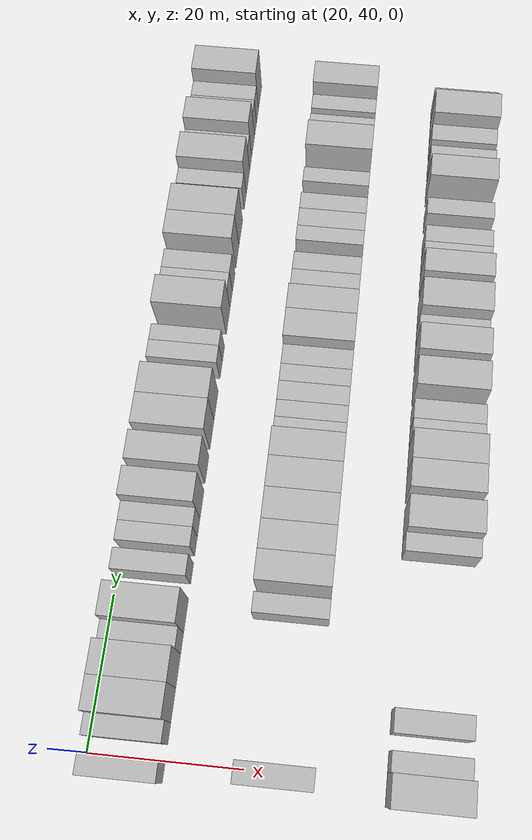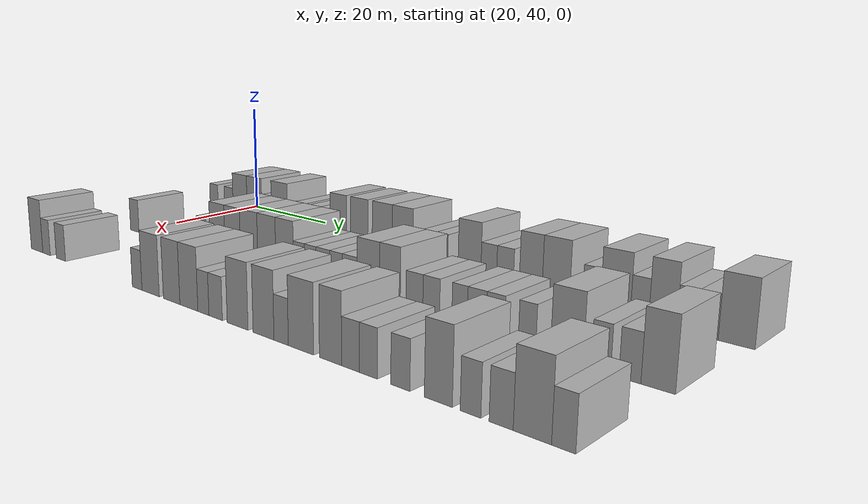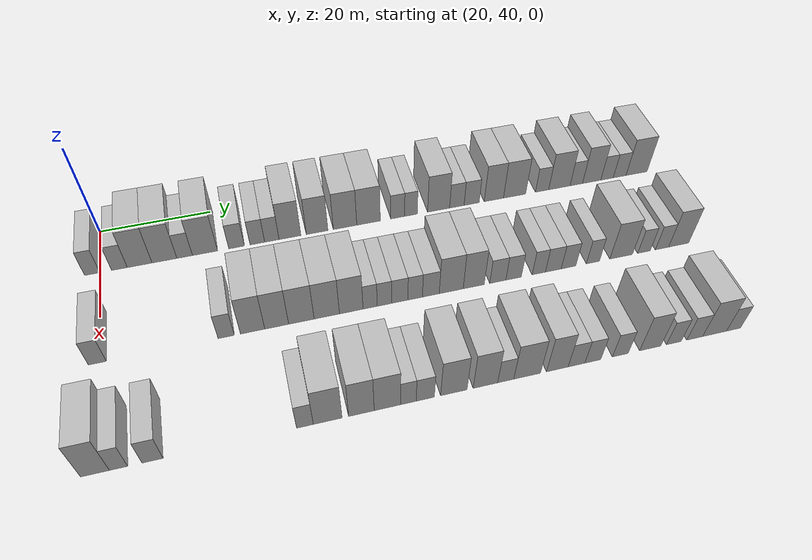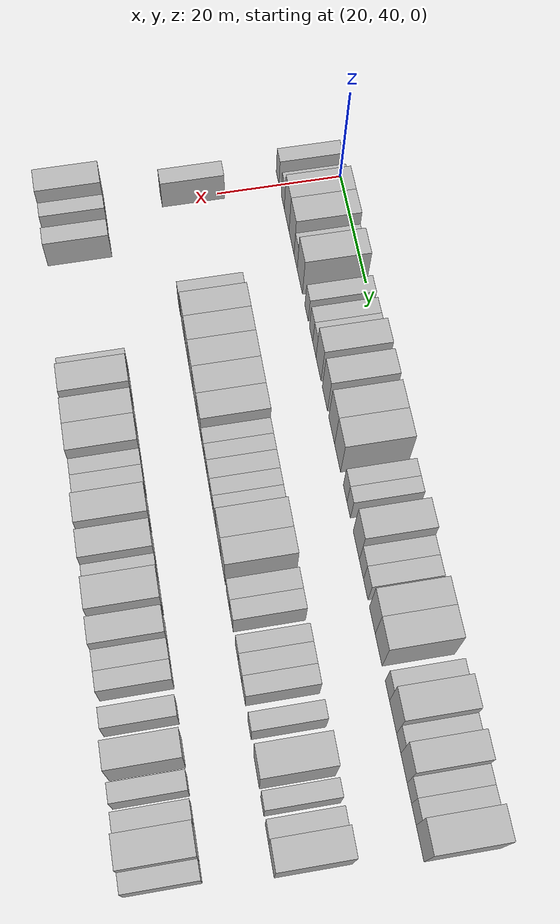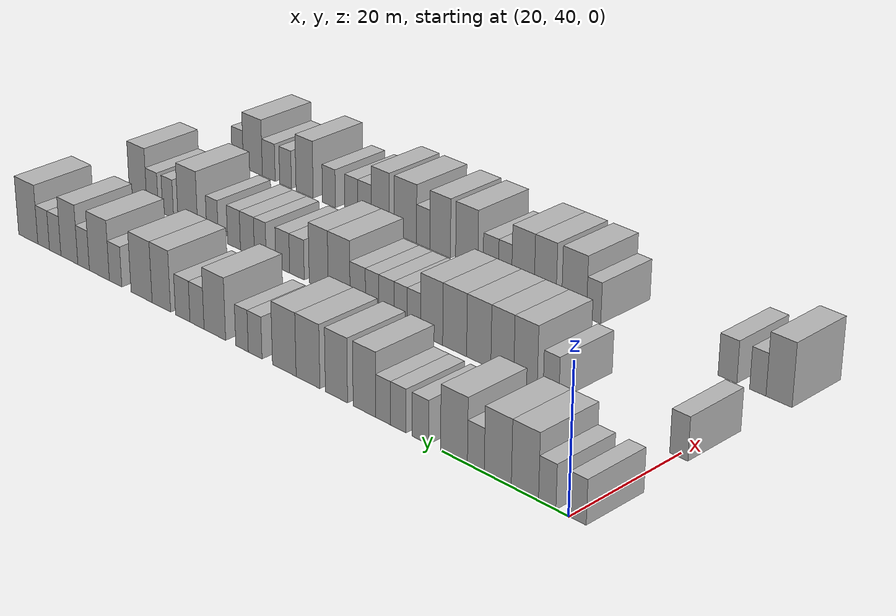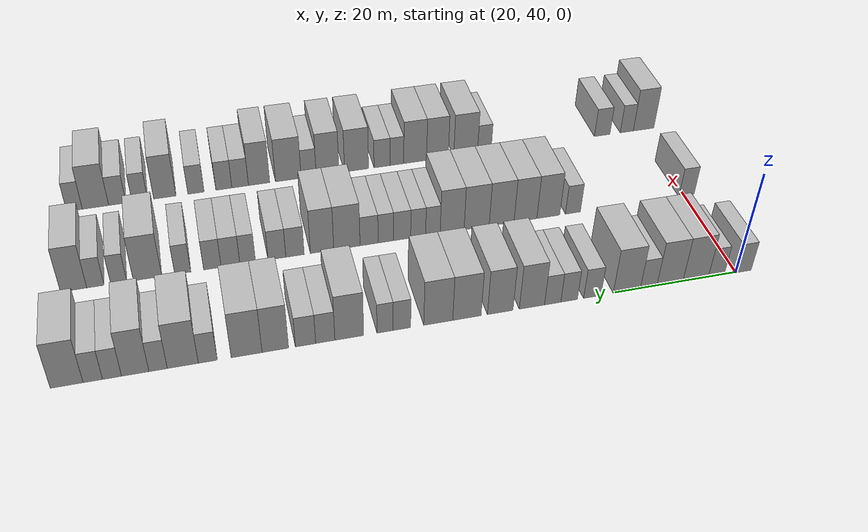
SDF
<sdf version="1.6">
 <world name="default">
  <model name="building_74">
   <static>1</static>
   <pose>25.0000 38.6891 0 0.000000 0.000000 0.000000</pose>
   <link name="link">
    <pose>0 0 3.00 0 0 0</pose>
    <collision name="collision"><geometry><box><size>10.0000 2.5758 6.0000</size></box></geometry></collision>
    <visual name="visual">
     <cast_shadows>0</cast_shadows>
     <geometry><box><size>10.0000 2.5758 6.0000</size></box></geometry>
     <material>
      <script>
       <uri>model://HANNAS_wall/materials/scripts</uri>
       <uri>model://HANNAS_wall/materials/textures</uri>
       <name>vrc/HANNAS_wall</name>
      </script>
     </material>
    </visual>
   </link>
  </model>
  <model name="building_75">
   <static>1</static>
   <pose>25.0000 43.3179 0 0.000000 0.000000 0.000000</pose>
   <link name="link">
    <pose>0 0 3.00 0 0 0</pose>
    <collision name="collision"><geometry><box><size>10.0000 2.6818 6.0000</size></box></geometry></collision>
    <visual name="visual">
     <cast_shadows>0</cast_shadows>
     <geometry><box><size>10.0000 2.6818 6.0000</size></box></geometry>
     <material>
      <script>
       <uri>model://HANNAS_wall/materials/scripts</uri>
       <uri>model://HANNAS_wall/materials/textures</uri>
       <name>vrc/HANNAS_wall</name>
      </script>
     </material>
    </visual>
   </link>
  </model>
  <model name="building_76">
   <static>1</static>
   <pose>25.0000 46.7869 0 0.000000 0.000000 0.000000</pose>
   <link name="link">
    <pose>0 0 4.50 0 0 0</pose>
    <collision name="collision"><geometry><box><size>10.0000 4.2561 9.0000</size></box></geometry></collision>
    <visual name="visual">
     <cast_shadows>0</cast_shadows>
     <geometry><box><size>10.0000 4.2561 9.0000</size></box></geometry>
     <material>
      <script>
       <uri>model://HANNAS_wall/materials/scripts</uri>
       <uri>model://HANNAS_wall/materials/textures</uri>
       <name>vrc/HANNAS_wall</name>
      </script>
     </material>
    </visual>
   </link>
  </model>
  <model name="building_77">
   <static>1</static>
   <pose>25.0000 51.0755 0 0.000000 0.000000 0.000000</pose>
   <link name="link">
    <pose>0 0 4.50 0 0 0</pose>
    <collision name="collision"><geometry><box><size>10.0000 4.3211 9.0000</size></box></geometry></collision>
    <visual name="visual">
     <cast_shadows>0</cast_shadows>
     <geometry><box><size>10.0000 4.3211 9.0000</size></box></geometry>
     <material>
      <script>
       <uri>model://HANNAS_wall/materials/scripts</uri>
       <uri>model://HANNAS_wall/materials/textures</uri>
       <name>vrc/HANNAS_wall</name>
      </script>
     </material>
    </visual>
   </link>
  </model>
  <model name="building_78">
   <static>1</static>
   <pose>25.0000 54.5985 0 0.000000 0.000000 0.000000</pose>
   <link name="link">
    <pose>0 0 3.00 0 0 0</pose>
    <collision name="collision"><geometry><box><size>10.0000 2.7249 6.0000</size></box></geometry></collision>
    <visual name="visual">
     <cast_shadows>0</cast_shadows>
     <geometry><box><size>10.0000 2.7249 6.0000</size></box></geometry>
     <material>
      <script>
       <uri>model://HANNAS_wall/materials/scripts</uri>
       <uri>model://HANNAS_wall/materials/textures</uri>
       <name>vrc/HANNAS_wall</name>
      </script>
     </material>
    </visual>
   </link>
  </model>
  <model name="building_79">
   <static>1</static>
   <pose>25.0000 58.1758 0 0.000000 0.000000 0.000000</pose>
   <link name="link">
    <pose>0 0 4.50 0 0 0</pose>
    <collision name="collision"><geometry><box><size>10.0000 4.4297 9.0000</size></box></geometry></collision>
    <visual name="visual">
     <cast_shadows>0</cast_shadows>
     <geometry><box><size>10.0000 4.4297 9.0000</size></box></geometry>
     <material>
      <script>
       <uri>model://HANNAS_wall/materials/scripts</uri>
       <uri>model://HANNAS_wall/materials/textures</uri>
       <name>vrc/HANNAS_wall</name>
      </script>
     </material>
    </visual>
   </link>
  </model>
  <model name="building_80">
   <static>1</static>
   <pose>25.0000 63.7947 0 0.000000 0.000000 0.000000</pose>
   <link name="link">
    <pose>0 0 3.00 0 0 0</pose>
    <collision name="collision"><geometry><box><size>10.0000 2.8082 6.0000</size></box></geometry></collision>
    <visual name="visual">
     <cast_shadows>0</cast_shadows>
     <geometry><box><size>10.0000 2.8082 6.0000</size></box></geometry>
     <material>
      <script>
       <uri>model://HANNAS_wall/materials/scripts</uri>
       <uri>model://HANNAS_wall/materials/textures</uri>
       <name>vrc/HANNAS_wall</name>
      </script>
     </material>
    </visual>
   </link>
  </model>
  <model name="building_81">
   <static>1</static>
   <pose>25.0000 67.5253 0 0.000000 0.000000 0.000000</pose>
   <link name="link">
    <pose>0 0 3.00 0 0 0</pose>
    <collision name="collision"><geometry><box><size>10.0000 2.6530 6.0000</size></box></geometry></collision>
    <visual name="visual">
     <cast_shadows>0</cast_shadows>
     <geometry><box><size>10.0000 2.6530 6.0000</size></box></geometry>
     <material>
      <script>
       <uri>model://HANNAS_wall/materials/scripts</uri>
       <uri>model://HANNAS_wall/materials/textures</uri>
       <name>vrc/HANNAS_wall</name>
      </script>
     </material>
    </visual>
   </link>
  </model>
  <model name="building_82">
   <static>1</static>
   <pose>25.0000 70.1543 0 0.000000 0.000000 0.000000</pose>
   <link name="link">
    <pose>0 0 3.00 0 0 0</pose>
    <collision name="collision"><geometry><box><size>10.0000 2.6051 6.0000</size></box></geometry></collision>
    <visual name="visual">
     <cast_shadows>0</cast_shadows>
     <geometry><box><size>10.0000 2.6051 6.0000</size></box></geometry>
     <material>
      <script>
       <uri>model://HANNAS_wall/materials/scripts</uri>
       <uri>model://HANNAS_wall/materials/textures</uri>
       <name>vrc/HANNAS_wall</name>
      </script>
     </material>
    </visual>
   </link>
  </model>
  <model name="building_83">
   <static>1</static>
   <pose>25.0000 73.4548 0 0.000000 0.000000 0.000000</pose>
   <link name="link">
    <pose>0 0 4.50 0 0 0</pose>
    <collision name="collision"><geometry><box><size>10.0000 3.9959 9.0000</size></box></geometry></collision>
    <visual name="visual">
     <cast_shadows>0</cast_shadows>
     <geometry><box><size>10.0000 3.9959 9.0000</size></box></geometry>
     <material>
      <script>
       <uri>model://HANNAS_wall/materials/scripts</uri>
       <uri>model://HANNAS_wall/materials/textures</uri>
       <name>vrc/HANNAS_wall</name>
      </script>
     </material>
    </visual>
   </link>
  </model>
  <model name="building_84">
   <static>1</static>
   <pose>25.0000 78.4552 0 0.000000 0.000000 0.000000</pose>
   <link name="link">
    <pose>0 0 4.50 0 0 0</pose>
    <collision name="collision"><geometry><box><size>10.0000 4.0050 9.0000</size></box></geometry></collision>
    <visual name="visual">
     <cast_shadows>0</cast_shadows>
     <geometry><box><size>10.0000 4.0050 9.0000</size></box></geometry>
     <material>
      <script>
       <uri>model://HANNAS_wall/materials/scripts</uri>
       <uri>model://HANNAS_wall/materials/textures</uri>
       <name>vrc/HANNAS_wall</name>
      </script>
     </material>
    </visual>
   </link>
  </model>
  <model name="building_85">
   <static>1</static>
   <pose>25.0000 83.6570 0 0.000000 0.000000 0.000000</pose>
   <link name="link">
    <pose>0 0 4.50 0 0 0</pose>
    <collision name="collision"><geometry><box><size>10.0000 4.3985 9.0000</size></box></geometry></collision>
    <visual name="visual">
     <cast_shadows>0</cast_shadows>
     <geometry><box><size>10.0000 4.3985 9.0000</size></box></geometry>
     <material>
      <script>
       <uri>model://HANNAS_wall/materials/scripts</uri>
       <uri>model://HANNAS_wall/materials/textures</uri>
       <name>vrc/HANNAS_wall</name>
      </script>
     </material>
    </visual>
   </link>
  </model>
  <model name="building_86">
   <static>1</static>
   <pose>25.0000 88.0851 0 0.000000 0.000000 0.000000</pose>
   <link name="link">
    <pose>0 0 4.50 0 0 0</pose>
    <collision name="collision"><geometry><box><size>10.0000 4.4577 9.0000</size></box></geometry></collision>
    <visual name="visual">
     <cast_shadows>0</cast_shadows>
     <geometry><box><size>10.0000 4.4577 9.0000</size></box></geometry>
     <material>
      <script>
       <uri>model://HANNAS_wall/materials/scripts</uri>
       <uri>model://HANNAS_wall/materials/textures</uri>
       <name>vrc/HANNAS_wall</name>
      </script>
     </material>
    </visual>
   </link>
  </model>
  <model name="building_87">
   <static>1</static>
   <pose>25.0000 93.6414 0 0.000000 0.000000 0.000000</pose>
   <link name="link">
    <pose>0 0 3.00 0 0 0</pose>
    <collision name="collision"><geometry><box><size>10.0000 2.6549 6.0000</size></box></geometry></collision>
    <visual name="visual">
     <cast_shadows>0</cast_shadows>
     <geometry><box><size>10.0000 2.6549 6.0000</size></box></geometry>
     <material>
      <script>
       <uri>model://HANNAS_wall/materials/scripts</uri>
       <uri>model://HANNAS_wall/materials/textures</uri>
       <name>vrc/HANNAS_wall</name>
      </script>
     </material>
    </visual>
   </link>
  </model>
  <model name="building_88">
   <static>1</static>
   <pose>25.0000 96.1899 0 0.000000 0.000000 0.000000</pose>
   <link name="link">
    <pose>0 0 3.00 0 0 0</pose>
    <collision name="collision"><geometry><box><size>10.0000 2.4421 6.0000</size></box></geometry></collision>
    <visual name="visual">
     <cast_shadows>0</cast_shadows>
     <geometry><box><size>10.0000 2.4421 6.0000</size></box></geometry>
     <material>
      <script>
       <uri>model://HANNAS_wall/materials/scripts</uri>
       <uri>model://HANNAS_wall/materials/textures</uri>
       <name>vrc/HANNAS_wall</name>
      </script>
     </material>
    </visual>
   </link>
  </model>
  <model name="building_89">
   <static>1</static>
   <pose>25.0000 101.5640 0 0.000000 0.000000 0.000000</pose>
   <link name="link">
    <pose>0 0 4.50 0 0 0</pose>
    <collision name="collision"><geometry><box><size>10.0000 4.3061 9.0000</size></box></geometry></collision>
    <visual name="visual">
     <cast_shadows>0</cast_shadows>
     <geometry><box><size>10.0000 4.3061 9.0000</size></box></geometry>
     <material>
      <script>
       <uri>model://HANNAS_wall/materials/scripts</uri>
       <uri>model://HANNAS_wall/materials/textures</uri>
       <name>vrc/HANNAS_wall</name>
      </script>
     </material>
    </visual>
   </link>
  </model>
  <model name="building_90">
   <static>1</static>
   <pose>25.0000 105.1426 0 0.000000 0.000000 0.000000</pose>
   <link name="link">
    <pose>0 0 3.00 0 0 0</pose>
    <collision name="collision"><geometry><box><size>10.0000 2.8512 6.0000</size></box></geometry></collision>
    <visual name="visual">
     <cast_shadows>0</cast_shadows>
     <geometry><box><size>10.0000 2.8512 6.0000</size></box></geometry>
     <material>
      <script>
       <uri>model://HANNAS_wall/materials/scripts</uri>
       <uri>model://HANNAS_wall/materials/textures</uri>
       <name>vrc/HANNAS_wall</name>
      </script>
     </material>
    </visual>
   </link>
  </model>
  <model name="building_91">
   <static>1</static>
   <pose>25.0000 108.0610 0 0.000000 0.000000 0.000000</pose>
   <link name="link">
    <pose>0 0 3.00 0 0 0</pose>
    <collision name="collision"><geometry><box><size>10.0000 2.9856 6.0000</size></box></geometry></collision>
    <visual name="visual">
     <cast_shadows>0</cast_shadows>
     <geometry><box><size>10.0000 2.9856 6.0000</size></box></geometry>
     <material>
      <script>
       <uri>model://HANNAS_wall/materials/scripts</uri>
       <uri>model://HANNAS_wall/materials/textures</uri>
       <name>vrc/HANNAS_wall</name>
      </script>
     </material>
    </visual>
   </link>
  </model>
  <model name="building_92">
   <static>1</static>
   <pose>25.0000 112.4862 0 0.000000 0.000000 0.000000</pose>
   <link name="link">
    <pose>0 0 4.50 0 0 0</pose>
    <collision name="collision"><geometry><box><size>10.0000 3.8649 9.0000</size></box></geometry></collision>
    <visual name="visual">
     <cast_shadows>0</cast_shadows>
     <geometry><box><size>10.0000 3.8649 9.0000</size></box></geometry>
     <material>
      <script>
       <uri>model://HANNAS_wall/materials/scripts</uri>
       <uri>model://HANNAS_wall/materials/textures</uri>
       <name>vrc/HANNAS_wall</name>
      </script>
     </material>
    </visual>
   </link>
  </model>
  <model name="building_93">
   <static>1</static>
   <pose>25.0000 116.6556 0 0.000000 0.000000 0.000000</pose>
   <link name="link">
    <pose>0 0 4.50 0 0 0</pose>
    <collision name="collision"><geometry><box><size>10.0000 4.4738 9.0000</size></box></geometry></collision>
    <visual name="visual">
     <cast_shadows>0</cast_shadows>
     <geometry><box><size>10.0000 4.4738 9.0000</size></box></geometry>
     <material>
      <script>
       <uri>model://HANNAS_wall/materials/scripts</uri>
       <uri>model://HANNAS_wall/materials/textures</uri>
       <name>vrc/HANNAS_wall</name>
      </script>
     </material>
    </visual>
   </link>
  </model>
  <model name="building_94">
   <static>1</static>
   <pose>25.0000 122.2431 0 0.000000 0.000000 0.000000</pose>
   <link name="link">
    <pose>0 0 3.00 0 0 0</pose>
    <collision name="collision"><geometry><box><size>10.0000 2.7012 6.0000</size></box></geometry></collision>
    <visual name="visual">
     <cast_shadows>0</cast_shadows>
     <geometry><box><size>10.0000 2.7012 6.0000</size></box></geometry>
     <material>
      <script>
       <uri>model://HANNAS_wall/materials/scripts</uri>
       <uri>model://HANNAS_wall/materials/textures</uri>
       <name>vrc/HANNAS_wall</name>
      </script>
     </material>
    </visual>
   </link>
  </model>
  <model name="building_95">
   <static>1</static>
   <pose>25.0000 125.7978 0 0.000000 0.000000 0.000000</pose>
   <link name="link">
    <pose>0 0 4.50 0 0 0</pose>
    <collision name="collision"><geometry><box><size>10.0000 4.4082 9.0000</size></box></geometry></collision>
    <visual name="visual">
     <cast_shadows>0</cast_shadows>
     <geometry><box><size>10.0000 4.4082 9.0000</size></box></geometry>
     <material>
      <script>
       <uri>model://HANNAS_wall/materials/scripts</uri>
       <uri>model://HANNAS_wall/materials/textures</uri>
       <name>vrc/HANNAS_wall</name>
      </script>
     </material>
    </visual>
   </link>
  </model>
  <model name="building_96">
   <static>1</static>
   <pose>25.0000 129.2958 0 0.000000 0.000000 0.000000</pose>
   <link name="link">
    <pose>0 0 3.00 0 0 0</pose>
    <collision name="collision"><geometry><box><size>10.0000 2.5879 6.0000</size></box></geometry></collision>
    <visual name="visual">
     <cast_shadows>0</cast_shadows>
     <geometry><box><size>10.0000 2.5879 6.0000</size></box></geometry>
     <material>
      <script>
       <uri>model://HANNAS_wall/materials/scripts</uri>
       <uri>model://HANNAS_wall/materials/textures</uri>
       <name>vrc/HANNAS_wall</name>
      </script>
     </material>
    </visual>
   </link>
  </model>
  <model name="building_97">
   <static>1</static>
   <pose>25.0000 132.5038 0 0.000000 0.000000 0.000000</pose>
   <link name="link">
    <pose>0 0 4.50 0 0 0</pose>
    <collision name="collision"><geometry><box><size>10.0000 3.8282 9.0000</size></box></geometry></collision>
    <visual name="visual">
     <cast_shadows>0</cast_shadows>
     <geometry><box><size>10.0000 3.8282 9.0000</size></box></geometry>
     <material>
      <script>
       <uri>model://HANNAS_wall/materials/scripts</uri>
       <uri>model://HANNAS_wall/materials/textures</uri>
       <name>vrc/HANNAS_wall</name>
      </script>
     </material>
    </visual>
   </link>
  </model>
  <model name="building_98">
   <static>1</static>
   <pose>25.0000 135.7334 0 0.000000 0.000000 0.000000</pose>
   <link name="link">
    <pose>0 0 3.00 0 0 0</pose>
    <collision name="collision"><geometry><box><size>10.0000 2.6311 6.0000</size></box></geometry></collision>
    <visual name="visual">
     <cast_shadows>0</cast_shadows>
     <geometry><box><size>10.0000 2.6311 6.0000</size></box></geometry>
     <material>
      <script>
       <uri>model://HANNAS_wall/materials/scripts</uri>
       <uri>model://HANNAS_wall/materials/textures</uri>
       <name>vrc/HANNAS_wall</name>
      </script>
     </material>
    </visual>
   </link>
  </model>
  <model name="building_99">
   <static>1</static>
   <pose>25.0000 138.3954 0 0.000000 0.000000 0.000000</pose>
   <link name="link">
    <pose>0 0 3.00 0 0 0</pose>
    <collision name="collision"><geometry><box><size>10.0000 2.6928 6.0000</size></box></geometry></collision>
    <visual name="visual">
     <cast_shadows>0</cast_shadows>
     <geometry><box><size>10.0000 2.6928 6.0000</size></box></geometry>
     <material>
      <script>
       <uri>model://HANNAS_wall/materials/scripts</uri>
       <uri>model://HANNAS_wall/materials/textures</uri>
       <name>vrc/HANNAS_wall</name>
      </script>
     </material>
    </visual>
   </link>
  </model>
  <model name="building_100">
   <static>1</static>
   <pose>25.0000 141.9880 0 0.000000 0.000000 0.000000</pose>
   <link name="link">
    <pose>0 0 4.50 0 0 0</pose>
    <collision name="collision"><geometry><box><size>10.0000 4.4924 9.0000</size></box></geometry></collision>
    <visual name="visual">
     <cast_shadows>0</cast_shadows>
     <geometry><box><size>10.0000 4.4924 9.0000</size></box></geometry>
     <material>
      <script>
       <uri>model://HANNAS_wall/materials/scripts</uri>
       <uri>model://HANNAS_wall/materials/textures</uri>
       <name>vrc/HANNAS_wall</name>
      </script>
     </material>
    </visual>
   </link>
  </model>
  <model name="building_195">
   <static>1</static>
   <pose>44.0000 39.6334 0 0.000000 0.000000 0.000000</pose>
   <link name="link">
    <pose>0 0 3.00 0 0 0</pose>
    <collision name="collision"><geometry><box><size>10.0000 2.7764 6.0000</size></box></geometry></collision>
    <visual name="visual">
     <cast_shadows>0</cast_shadows>
     <geometry><box><size>10.0000 2.7764 6.0000</size></box></geometry>
     <material>
      <script>
       <uri>model://HANNAS_wall/materials/scripts</uri>
       <uri>model://HANNAS_wall/materials/textures</uri>
       <name>vrc/HANNAS_wall</name>
      </script>
     </material>
    </visual>
   </link>
  </model>
  <model name="building_196">
   <static>1</static>
   <pose>44.0000 59.9725 0 0.000000 0.000000 0.000000</pose>
   <link name="link">
    <pose>0 0 3.00 0 0 0</pose>
    <collision name="collision"><geometry><box><size>10.0000 2.6339 6.0000</size></box></geometry></collision>
    <visual name="visual">
     <cast_shadows>0</cast_shadows>
     <geometry><box><size>10.0000 2.6339 6.0000</size></box></geometry>
     <material>
      <script>
       <uri>model://HANNAS_wall/materials/scripts</uri>
       <uri>model://HANNAS_wall/materials/textures</uri>
       <name>vrc/HANNAS_wall</name>
      </script>
     </material>
    </visual>
   </link>
  </model>
  <model name="building_197">
   <static>1</static>
   <pose>44.0000 64.2819 0 0.000000 0.000000 0.000000</pose>
   <link name="link">
    <pose>0 0 4.50 0 0 0</pose>
    <collision name="collision"><geometry><box><size>10.0000 3.9849 9.0000</size></box></geometry></collision>
    <visual name="visual">
     <cast_shadows>0</cast_shadows>
     <geometry><box><size>10.0000 3.9849 9.0000</size></box></geometry>
     <material>
      <script>
       <uri>model://HANNAS_wall/materials/scripts</uri>
       <uri>model://HANNAS_wall/materials/textures</uri>
       <name>vrc/HANNAS_wall</name>
      </script>
     </material>
    </visual>
   </link>
  </model>
  <model name="building_198">
   <static>1</static>
   <pose>44.0000 68.2521 0 0.000000 0.000000 0.000000</pose>
   <link name="link">
    <pose>0 0 4.50 0 0 0</pose>
    <collision name="collision"><geometry><box><size>10.0000 3.9554 9.0000</size></box></geometry></collision>
    <visual name="visual">
     <cast_shadows>0</cast_shadows>
     <geometry><box><size>10.0000 3.9554 9.0000</size></box></geometry>
     <material>
      <script>
       <uri>model://HANNAS_wall/materials/scripts</uri>
       <uri>model://HANNAS_wall/materials/textures</uri>
       <name>vrc/HANNAS_wall</name>
      </script>
     </material>
    </visual>
   </link>
  </model>
  <model name="building_199">
   <static>1</static>
   <pose>44.0000 72.3589 0 0.000000 0.000000 0.000000</pose>
   <link name="link">
    <pose>0 0 4.50 0 0 0</pose>
    <collision name="collision"><geometry><box><size>10.0000 4.2582 9.0000</size></box></geometry></collision>
    <visual name="visual">
     <cast_shadows>0</cast_shadows>
     <geometry><box><size>10.0000 4.2582 9.0000</size></box></geometry>
     <material>
      <script>
       <uri>model://HANNAS_wall/materials/scripts</uri>
       <uri>model://HANNAS_wall/materials/textures</uri>
       <name>vrc/HANNAS_wall</name>
      </script>
     </material>
    </visual>
   </link>
  </model>
  <model name="building_200">
   <static>1</static>
   <pose>44.0000 76.6285 0 0.000000 0.000000 0.000000</pose>
   <link name="link">
    <pose>0 0 4.50 0 0 0</pose>
    <collision name="collision"><geometry><box><size>10.0000 4.2809 9.0000</size></box></geometry></collision>
    <visual name="visual">
     <cast_shadows>0</cast_shadows>
     <geometry><box><size>10.0000 4.2809 9.0000</size></box></geometry>
     <material>
      <script>
       <uri>model://HANNAS_wall/materials/scripts</uri>
       <uri>model://HANNAS_wall/materials/textures</uri>
       <name>vrc/HANNAS_wall</name>
      </script>
     </material>
    </visual>
   </link>
  </model>
  <model name="building_201">
   <static>1</static>
   <pose>44.0000 80.7864 0 0.000000 0.000000 0.000000</pose>
   <link name="link">
    <pose>0 0 4.50 0 0 0</pose>
    <collision name="collision"><geometry><box><size>10.0000 4.0350 9.0000</size></box></geometry></collision>
    <visual name="visual">
     <cast_shadows>0</cast_shadows>
     <geometry><box><size>10.0000 4.0350 9.0000</size></box></geometry>
     <material>
      <script>
       <uri>model://HANNAS_wall/materials/scripts</uri>
       <uri>model://HANNAS_wall/materials/textures</uri>
       <name>vrc/HANNAS_wall</name>
      </script>
     </material>
    </visual>
   </link>
  </model>
  <model name="building_202">
   <static>1</static>
   <pose>44.0000 84.0239 0 0.000000 0.000000 0.000000</pose>
   <link name="link">
    <pose>0 0 3.00 0 0 0</pose>
    <collision name="collision"><geometry><box><size>10.0000 2.4400 6.0000</size></box></geometry></collision>
    <visual name="visual">
     <cast_shadows>0</cast_shadows>
     <geometry><box><size>10.0000 2.4400 6.0000</size></box></geometry>
     <material>
      <script>
       <uri>model://HANNAS_wall/materials/scripts</uri>
       <uri>model://HANNAS_wall/materials/textures</uri>
       <name>vrc/HANNAS_wall</name>
      </script>
     </material>
    </visual>
   </link>
  </model>
  <model name="building_203">
   <static>1</static>
   <pose>44.0000 86.4921 0 0.000000 0.000000 0.000000</pose>
   <link name="link">
    <pose>0 0 3.00 0 0 0</pose>
    <collision name="collision"><geometry><box><size>10.0000 2.4965 6.0000</size></box></geometry></collision>
    <visual name="visual">
     <cast_shadows>0</cast_shadows>
     <geometry><box><size>10.0000 2.4965 6.0000</size></box></geometry>
     <material>
      <script>
       <uri>model://HANNAS_wall/materials/scripts</uri>
       <uri>model://HANNAS_wall/materials/textures</uri>
       <name>vrc/HANNAS_wall</name>
      </script>
     </material>
    </visual>
   </link>
  </model>
  <model name="building_204">
   <static>1</static>
   <pose>44.0000 89.1582 0 0.000000 0.000000 0.000000</pose>
   <link name="link">
    <pose>0 0 3.00 0 0 0</pose>
    <collision name="collision"><geometry><box><size>10.0000 2.8358 6.0000</size></box></geometry></collision>
    <visual name="visual">
     <cast_shadows>0</cast_shadows>
     <geometry><box><size>10.0000 2.8358 6.0000</size></box></geometry>
     <material>
      <script>
       <uri>model://HANNAS_wall/materials/scripts</uri>
       <uri>model://HANNAS_wall/materials/textures</uri>
       <name>vrc/HANNAS_wall</name>
      </script>
     </material>
    </visual>
   </link>
  </model>
  <model name="building_205">
   <static>1</static>
   <pose>44.0000 91.8524 0 0.000000 0.000000 0.000000</pose>
   <link name="link">
    <pose>0 0 3.00 0 0 0</pose>
    <collision name="collision"><geometry><box><size>10.0000 2.5527 6.0000</size></box></geometry></collision>
    <visual name="visual">
     <cast_shadows>0</cast_shadows>
     <geometry><box><size>10.0000 2.5527 6.0000</size></box></geometry>
     <material>
      <script>
       <uri>model://HANNAS_wall/materials/scripts</uri>
       <uri>model://HANNAS_wall/materials/textures</uri>
       <name>vrc/HANNAS_wall</name>
      </script>
     </material>
    </visual>
   </link>
  </model>
  <model name="building_206">
   <static>1</static>
   <pose>44.0000 94.6177 0 0.000000 0.000000 0.000000</pose>
   <link name="link">
    <pose>0 0 3.00 0 0 0</pose>
    <collision name="collision"><geometry><box><size>10.0000 2.9777 6.0000</size></box></geometry></collision>
    <visual name="visual">
     <cast_shadows>0</cast_shadows>
     <geometry><box><size>10.0000 2.9777 6.0000</size></box></geometry>
     <material>
      <script>
       <uri>model://HANNAS_wall/materials/scripts</uri>
       <uri>model://HANNAS_wall/materials/textures</uri>
       <name>vrc/HANNAS_wall</name>
      </script>
     </material>
    </visual>
   </link>
  </model>
  <model name="building_207">
   <static>1</static>
   <pose>44.0000 98.2470 0 0.000000 0.000000 0.000000</pose>
   <link name="link">
    <pose>0 0 4.50 0 0 0</pose>
    <collision name="collision"><geometry><box><size>10.0000 4.2809 9.0000</size></box></geometry></collision>
    <visual name="visual">
     <cast_shadows>0</cast_shadows>
     <geometry><box><size>10.0000 4.2809 9.0000</size></box></geometry>
     <material>
      <script>
       <uri>model://HANNAS_wall/materials/scripts</uri>
       <uri>model://HANNAS_wall/materials/textures</uri>
       <name>vrc/HANNAS_wall</name>
      </script>
     </material>
    </visual>
   </link>
  </model>
  <model name="building_208">
   <static>1</static>
   <pose>44.0000 102.2817 0 0.000000 0.000000 0.000000</pose>
   <link name="link">
    <pose>0 0 4.50 0 0 0</pose>
    <collision name="collision"><geometry><box><size>10.0000 3.7885 9.0000</size></box></geometry></collision>
    <visual name="visual">
     <cast_shadows>0</cast_shadows>
     <geometry><box><size>10.0000 3.7885 9.0000</size></box></geometry>
     <material>
      <script>
       <uri>model://HANNAS_wall/materials/scripts</uri>
       <uri>model://HANNAS_wall/materials/textures</uri>
       <name>vrc/HANNAS_wall</name>
      </script>
     </material>
    </visual>
   </link>
  </model>
  <model name="building_209">
   <static>1</static>
   <pose>44.0000 106.6486 0 0.000000 0.000000 0.000000</pose>
   <link name="link">
    <pose>0 0 3.00 0 0 0</pose>
    <collision name="collision"><geometry><box><size>10.0000 2.9454 6.0000</size></box></geometry></collision>
    <visual name="visual">
     <cast_shadows>0</cast_shadows>
     <geometry><box><size>10.0000 2.9454 6.0000</size></box></geometry>
     <material>
      <script>
       <uri>model://HANNAS_wall/materials/scripts</uri>
       <uri>model://HANNAS_wall/materials/textures</uri>
       <name>vrc/HANNAS_wall</name>
      </script>
     </material>
    </visual>
   </link>
  </model>
  <model name="building_210">
   <static>1</static>
   <pose>44.0000 109.5392 0 0.000000 0.000000 0.000000</pose>
   <link name="link">
    <pose>0 0 3.00 0 0 0</pose>
    <collision name="collision"><geometry><box><size>10.0000 2.8359 6.0000</size></box></geometry></collision>
    <visual name="visual">
     <cast_shadows>0</cast_shadows>
     <geometry><box><size>10.0000 2.8359 6.0000</size></box></geometry>
     <material>
      <script>
       <uri>model://HANNAS_wall/materials/scripts</uri>
       <uri>model://HANNAS_wall/materials/textures</uri>
       <name>vrc/HANNAS_wall</name>
      </script>
     </material>
    </visual>
   </link>
  </model>
  <model name="building_211">
   <static>1</static>
   <pose>44.0000 114.1890 0 0.000000 0.000000 0.000000</pose>
   <link name="link">
    <pose>0 0 3.00 0 0 0</pose>
    <collision name="collision"><geometry><box><size>10.0000 2.4635 6.0000</size></box></geometry></collision>
    <visual name="visual">
     <cast_shadows>0</cast_shadows>
     <geometry><box><size>10.0000 2.4635 6.0000</size></box></geometry>
     <material>
      <script>
       <uri>model://HANNAS_wall/materials/scripts</uri>
       <uri>model://HANNAS_wall/materials/textures</uri>
       <name>vrc/HANNAS_wall</name>
      </script>
     </material>
    </visual>
   </link>
  </model>
  <model name="building_212">
   <static>1</static>
   <pose>44.0000 116.8976 0 0.000000 0.000000 0.000000</pose>
   <link name="link">
    <pose>0 0 3.00 0 0 0</pose>
    <collision name="collision"><geometry><box><size>10.0000 2.9538 6.0000</size></box></geometry></collision>
    <visual name="visual">
     <cast_shadows>0</cast_shadows>
     <geometry><box><size>10.0000 2.9538 6.0000</size></box></geometry>
     <material>
      <script>
       <uri>model://HANNAS_wall/materials/scripts</uri>
       <uri>model://HANNAS_wall/materials/textures</uri>
       <name>vrc/HANNAS_wall</name>
      </script>
     </material>
    </visual>
   </link>
  </model>
  <model name="building_213">
   <static>1</static>
   <pose>44.0000 119.7448 0 0.000000 0.000000 0.000000</pose>
   <link name="link">
    <pose>0 0 3.00 0 0 0</pose>
    <collision name="collision"><geometry><box><size>10.0000 2.7407 6.0000</size></box></geometry></collision>
    <visual name="visual">
     <cast_shadows>0</cast_shadows>
     <geometry><box><size>10.0000 2.7407 6.0000</size></box></geometry>
     <material>
      <script>
       <uri>model://HANNAS_wall/materials/scripts</uri>
       <uri>model://HANNAS_wall/materials/textures</uri>
       <name>vrc/HANNAS_wall</name>
      </script>
     </material>
    </visual>
   </link>
  </model>
  <model name="building_214">
   <static>1</static>
   <pose>44.0000 124.3639 0 0.000000 0.000000 0.000000</pose>
   <link name="link">
    <pose>0 0 3.00 0 0 0</pose>
    <collision name="collision"><geometry><box><size>10.0000 2.4974 6.0000</size></box></geometry></collision>
    <visual name="visual">
     <cast_shadows>0</cast_shadows>
     <geometry><box><size>10.0000 2.4974 6.0000</size></box></geometry>
     <material>
      <script>
       <uri>model://HANNAS_wall/materials/scripts</uri>
       <uri>model://HANNAS_wall/materials/textures</uri>
       <name>vrc/HANNAS_wall</name>
      </script>
     </material>
    </visual>
   </link>
  </model>
  <model name="building_215">
   <static>1</static>
   <pose>44.0000 129.7958 0 0.000000 0.000000 0.000000</pose>
   <link name="link">
    <pose>0 0 4.50 0 0 0</pose>
    <collision name="collision"><geometry><box><size>10.0000 4.3665 9.0000</size></box></geometry></collision>
    <visual name="visual">
     <cast_shadows>0</cast_shadows>
     <geometry><box><size>10.0000 4.3665 9.0000</size></box></geometry>
     <material>
      <script>
       <uri>model://HANNAS_wall/materials/scripts</uri>
       <uri>model://HANNAS_wall/materials/textures</uri>
       <name>vrc/HANNAS_wall</name>
      </script>
     </material>
    </visual>
   </link>
  </model>
  <model name="building_216">
   <static>1</static>
   <pose>44.0000 134.2002 0 0.000000 0.000000 0.000000</pose>
   <link name="link">
    <pose>0 0 3.00 0 0 0</pose>
    <collision name="collision"><geometry><box><size>10.0000 2.4422 6.0000</size></box></geometry></collision>
    <visual name="visual">
     <cast_shadows>0</cast_shadows>
     <geometry><box><size>10.0000 2.4422 6.0000</size></box></geometry>
     <material>
      <script>
       <uri>model://HANNAS_wall/materials/scripts</uri>
       <uri>model://HANNAS_wall/materials/textures</uri>
       <name>vrc/HANNAS_wall</name>
      </script>
     </material>
    </visual>
   </link>
  </model>
  <model name="building_217">
   <static>1</static>
   <pose>44.0000 137.7335 0 0.000000 0.000000 0.000000</pose>
   <link name="link">
    <pose>0 0 3.00 0 0 0</pose>
    <collision name="collision"><geometry><box><size>10.0000 2.6244 6.0000</size></box></geometry></collision>
    <visual name="visual">
     <cast_shadows>0</cast_shadows>
     <geometry><box><size>10.0000 2.6244 6.0000</size></box></geometry>
     <material>
      <script>
       <uri>model://HANNAS_wall/materials/scripts</uri>
       <uri>model://HANNAS_wall/materials/textures</uri>
       <name>vrc/HANNAS_wall</name>
      </script>
     </material>
    </visual>
   </link>
  </model>
  <model name="building_218">
   <static>1</static>
   <pose>44.0000 141.0242 0 0.000000 0.000000 0.000000</pose>
   <link name="link">
    <pose>0 0 4.50 0 0 0</pose>
    <collision name="collision"><geometry><box><size>10.0000 3.9570 9.0000</size></box></geometry></collision>
    <visual name="visual">
     <cast_shadows>0</cast_shadows>
     <geometry><box><size>10.0000 3.9570 9.0000</size></box></geometry>
     <material>
      <script>
       <uri>model://HANNAS_wall/materials/scripts</uri>
       <uri>model://HANNAS_wall/materials/textures</uri>
       <name>vrc/HANNAS_wall</name>
      </script>
     </material>
    </visual>
   </link>
  </model>
  <model name="building_317">
   <static>1</static>
   <pose>63.0000 39.3932 0 0.000000 0.000000 0.000000</pose>
   <link name="link">
    <pose>0 0 4.50 0 0 0</pose>
    <collision name="collision"><geometry><box><size>10.0000 3.9953 9.0000</size></box></geometry></collision>
    <visual name="visual">
     <cast_shadows>0</cast_shadows>
     <geometry><box><size>10.0000 3.9953 9.0000</size></box></geometry>
     <material>
      <script>
       <uri>model://HANNAS_wall/materials/scripts</uri>
       <uri>model://HANNAS_wall/materials/textures</uri>
       <name>vrc/HANNAS_wall</name>
      </script>
     </material>
    </visual>
   </link>
  </model>
  <model name="building_318">
   <static>1</static>
   <pose>63.0000 42.6605 0 0.000000 0.000000 0.000000</pose>
   <link name="link">
    <pose>0 0 3.00 0 0 0</pose>
    <collision name="collision"><geometry><box><size>10.0000 2.5393 6.0000</size></box></geometry></collision>
    <visual name="visual">
     <cast_shadows>0</cast_shadows>
     <geometry><box><size>10.0000 2.5393 6.0000</size></box></geometry>
     <material>
      <script>
       <uri>model://HANNAS_wall/materials/scripts</uri>
       <uri>model://HANNAS_wall/materials/textures</uri>
       <name>vrc/HANNAS_wall</name>
      </script>
     </material>
    </visual>
   </link>
  </model>
  <model name="building_319">
   <static>1</static>
   <pose>63.0000 47.4221 0 0.000000 0.000000 0.000000</pose>
   <link name="link">
    <pose>0 0 3.00 0 0 0</pose>
    <collision name="collision"><geometry><box><size>10.0000 2.9839 6.0000</size></box></geometry></collision>
    <visual name="visual">
     <cast_shadows>0</cast_shadows>
     <geometry><box><size>10.0000 2.9839 6.0000</size></box></geometry>
     <material>
      <script>
       <uri>model://HANNAS_wall/materials/scripts</uri>
       <uri>model://HANNAS_wall/materials/textures</uri>
       <name>vrc/HANNAS_wall</name>
      </script>
     </material>
    </visual>
   </link>
  </model>
  <model name="building_320">
   <static>1</static>
   <pose>63.0000 69.6919 0 0.000000 0.000000 0.000000</pose>
   <link name="link">
    <pose>0 0 3.00 0 0 0</pose>
    <collision name="collision"><geometry><box><size>10.0000 2.5186 6.0000</size></box></geometry></collision>
    <visual name="visual">
     <cast_shadows>0</cast_shadows>
     <geometry><box><size>10.0000 2.5186 6.0000</size></box></geometry>
     <material>
      <script>
       <uri>model://HANNAS_wall/materials/scripts</uri>
       <uri>model://HANNAS_wall/materials/textures</uri>
       <name>vrc/HANNAS_wall</name>
      </script>
     </material>
    </visual>
   </link>
  </model>
  <model name="building_321">
   <static>1</static>
   <pose>63.0000 73.1422 0 0.000000 0.000000 0.000000</pose>
   <link name="link">
    <pose>0 0 4.50 0 0 0</pose>
    <collision name="collision"><geometry><box><size>10.0000 4.3821 9.0000</size></box></geometry></collision>
    <visual name="visual">
     <cast_shadows>0</cast_shadows>
     <geometry><box><size>10.0000 4.3821 9.0000</size></box></geometry>
     <material>
      <script>
       <uri>model://HANNAS_wall/materials/scripts</uri>
       <uri>model://HANNAS_wall/materials/textures</uri>
       <name>vrc/HANNAS_wall</name>
      </script>
     </material>
    </visual>
   </link>
  </model>
  <model name="building_322">
   <static>1</static>
   <pose>63.0000 78.3102 0 0.000000 0.000000 0.000000</pose>
   <link name="link">
    <pose>0 0 4.50 0 0 0</pose>
    <collision name="collision"><geometry><box><size>10.0000 3.9538 9.0000</size></box></geometry></collision>
    <visual name="visual">
     <cast_shadows>0</cast_shadows>
     <geometry><box><size>10.0000 3.9538 9.0000</size></box></geometry>
     <material>
      <script>
       <uri>model://HANNAS_wall/materials/scripts</uri>
       <uri>model://HANNAS_wall/materials/textures</uri>
       <name>vrc/HANNAS_wall</name>
      </script>
     </material>
    </visual>
   </link>
  </model>
  <model name="building_323">
   <static>1</static>
   <pose>63.0000 82.3524 0 0.000000 0.000000 0.000000</pose>
   <link name="link">
    <pose>0 0 4.50 0 0 0</pose>
    <collision name="collision"><geometry><box><size>10.0000 4.1306 9.0000</size></box></geometry></collision>
    <visual name="visual">
     <cast_shadows>0</cast_shadows>
     <geometry><box><size>10.0000 4.1306 9.0000</size></box></geometry>
     <material>
      <script>
       <uri>model://HANNAS_wall/materials/scripts</uri>
       <uri>model://HANNAS_wall/materials/textures</uri>
       <name>vrc/HANNAS_wall</name>
      </script>
     </material>
    </visual>
   </link>
  </model>
  <model name="building_324">
   <static>1</static>
   <pose>63.0000 85.6416 0 0.000000 0.000000 0.000000</pose>
   <link name="link">
    <pose>0 0 3.00 0 0 0</pose>
    <collision name="collision"><geometry><box><size>10.0000 2.4478 6.0000</size></box></geometry></collision>
    <visual name="visual">
     <cast_shadows>0</cast_shadows>
     <geometry><box><size>10.0000 2.4478 6.0000</size></box></geometry>
     <material>
      <script>
       <uri>model://HANNAS_wall/materials/scripts</uri>
       <uri>model://HANNAS_wall/materials/textures</uri>
       <name>vrc/HANNAS_wall</name>
      </script>
     </material>
    </visual>
   </link>
  </model>
  <model name="building_325">
   <static>1</static>
   <pose>63.0000 88.3067 0 0.000000 0.000000 0.000000</pose>
   <link name="link">
    <pose>0 0 3.00 0 0 0</pose>
    <collision name="collision"><geometry><box><size>10.0000 2.8824 6.0000</size></box></geometry></collision>
    <visual name="visual">
     <cast_shadows>0</cast_shadows>
     <geometry><box><size>10.0000 2.8824 6.0000</size></box></geometry>
     <material>
      <script>
       <uri>model://HANNAS_wall/materials/scripts</uri>
       <uri>model://HANNAS_wall/materials/textures</uri>
       <name>vrc/HANNAS_wall</name>
      </script>
     </material>
    </visual>
   </link>
  </model>
  <model name="building_326">
   <static>1</static>
   <pose>63.0000 92.8723 0 0.000000 0.000000 0.000000</pose>
   <link name="link">
    <pose>0 0 4.50 0 0 0</pose>
    <collision name="collision"><geometry><box><size>10.0000 4.2488 9.0000</size></box></geometry></collision>
    <visual name="visual">
     <cast_shadows>0</cast_shadows>
     <geometry><box><size>10.0000 4.2488 9.0000</size></box></geometry>
     <material>
      <script>
       <uri>model://HANNAS_wall/materials/scripts</uri>
       <uri>model://HANNAS_wall/materials/textures</uri>
       <name>vrc/HANNAS_wall</name>
      </script>
     </material>
    </visual>
   </link>
  </model>
  <model name="building_327">
   <static>1</static>
   <pose>63.0000 97.9976 0 0.000000 0.000000 0.000000</pose>
   <link name="link">
    <pose>0 0 4.50 0 0 0</pose>
    <collision name="collision"><geometry><box><size>10.0000 4.0018 9.0000</size></box></geometry></collision>
    <visual name="visual">
     <cast_shadows>0</cast_shadows>
     <geometry><box><size>10.0000 4.0018 9.0000</size></box></geometry>
     <material>
      <script>
       <uri>model://HANNAS_wall/materials/scripts</uri>
       <uri>model://HANNAS_wall/materials/textures</uri>
       <name>vrc/HANNAS_wall</name>
      </script>
     </material>
    </visual>
   </link>
  </model>
  <model name="building_328">
   <static>1</static>
   <pose>63.0000 101.3180 0 0.000000 0.000000 0.000000</pose>
   <link name="link">
    <pose>0 0 3.00 0 0 0</pose>
    <collision name="collision"><geometry><box><size>10.0000 2.6390 6.0000</size></box></geometry></collision>
    <visual name="visual">
     <cast_shadows>0</cast_shadows>
     <geometry><box><size>10.0000 2.6390 6.0000</size></box></geometry>
     <material>
      <script>
       <uri>model://HANNAS_wall/materials/scripts</uri>
       <uri>model://HANNAS_wall/materials/textures</uri>
       <name>vrc/HANNAS_wall</name>
      </script>
     </material>
    </visual>
   </link>
  </model>
  <model name="building_329">
   <static>1</static>
   <pose>63.0000 104.8658 0 0.000000 0.000000 0.000000</pose>
   <link name="link">
    <pose>0 0 4.50 0 0 0</pose>
    <collision name="collision"><geometry><box><size>10.0000 4.4566 9.0000</size></box></geometry></collision>
    <visual name="visual">
     <cast_shadows>0</cast_shadows>
     <geometry><box><size>10.0000 4.4566 9.0000</size></box></geometry>
     <material>
      <script>
       <uri>model://HANNAS_wall/materials/scripts</uri>
       <uri>model://HANNAS_wall/materials/textures</uri>
       <name>vrc/HANNAS_wall</name>
      </script>
     </material>
    </visual>
   </link>
  </model>
  <model name="building_330">
   <static>1</static>
   <pose>63.0000 109.9229 0 0.000000 0.000000 0.000000</pose>
   <link name="link">
    <pose>0 0 4.50 0 0 0</pose>
    <collision name="collision"><geometry><box><size>10.0000 3.6576 9.0000</size></box></geometry></collision>
    <visual name="visual">
     <cast_shadows>0</cast_shadows>
     <geometry><box><size>10.0000 3.6576 9.0000</size></box></geometry>
     <material>
      <script>
       <uri>model://HANNAS_wall/materials/scripts</uri>
       <uri>model://HANNAS_wall/materials/textures</uri>
       <name>vrc/HANNAS_wall</name>
      </script>
     </material>
    </visual>
   </link>
  </model>
  <model name="building_331">
   <static>1</static>
   <pose>63.0000 113.1730 0 0.000000 0.000000 0.000000</pose>
   <link name="link">
    <pose>0 0 3.00 0 0 0</pose>
    <collision name="collision"><geometry><box><size>10.0000 2.8425 6.0000</size></box></geometry></collision>
    <visual name="visual">
     <cast_shadows>0</cast_shadows>
     <geometry><box><size>10.0000 2.8425 6.0000</size></box></geometry>
     <material>
      <script>
       <uri>model://HANNAS_wall/materials/scripts</uri>
       <uri>model://HANNAS_wall/materials/textures</uri>
       <name>vrc/HANNAS_wall</name>
      </script>
     </material>
    </visual>
   </link>
  </model>
  <model name="building_332">
   <static>1</static>
   <pose>63.0000 115.9553 0 0.000000 0.000000 0.000000</pose>
   <link name="link">
    <pose>0 0 3.00 0 0 0</pose>
    <collision name="collision"><geometry><box><size>10.0000 2.7222 6.0000</size></box></geometry></collision>
    <visual name="visual">
     <cast_shadows>0</cast_shadows>
     <geometry><box><size>10.0000 2.7222 6.0000</size></box></geometry>
     <material>
      <script>
       <uri>model://HANNAS_wall/materials/scripts</uri>
       <uri>model://HANNAS_wall/materials/textures</uri>
       <name>vrc/HANNAS_wall</name>
      </script>
     </material>
    </visual>
   </link>
  </model>
  <model name="building_333">
   <static>1</static>
   <pose>63.0000 120.6912 0 0.000000 0.000000 0.000000</pose>
   <link name="link">
    <pose>0 0 3.00 0 0 0</pose>
    <collision name="collision"><geometry><box><size>10.0000 2.7495 6.0000</size></box></geometry></collision>
    <visual name="visual">
     <cast_shadows>0</cast_shadows>
     <geometry><box><size>10.0000 2.7495 6.0000</size></box></geometry>
     <material>
      <script>
       <uri>model://HANNAS_wall/materials/scripts</uri>
       <uri>model://HANNAS_wall/materials/textures</uri>
       <name>vrc/HANNAS_wall</name>
      </script>
     </material>
    </visual>
   </link>
  </model>
  <model name="building_334">
   <static>1</static>
   <pose>63.0000 125.9341 0 0.000000 0.000000 0.000000</pose>
   <link name="link">
    <pose>0 0 4.50 0 0 0</pose>
    <collision name="collision"><geometry><box><size>10.0000 3.7365 9.0000</size></box></geometry></collision>
    <visual name="visual">
     <cast_shadows>0</cast_shadows>
     <geometry><box><size>10.0000 3.7365 9.0000</size></box></geometry>
     <material>
      <script>
       <uri>model://HANNAS_wall/materials/scripts</uri>
       <uri>model://HANNAS_wall/materials/textures</uri>
       <name>vrc/HANNAS_wall</name>
      </script>
     </material>
    </visual>
   </link>
  </model>
  <model name="building_335">
   <static>1</static>
   <pose>63.0000 130.1035 0 0.000000 0.000000 0.000000</pose>
   <link name="link">
    <pose>0 0 3.00 0 0 0</pose>
    <collision name="collision"><geometry><box><size>10.0000 2.6024 6.0000</size></box></geometry></collision>
    <visual name="visual">
     <cast_shadows>0</cast_shadows>
     <geometry><box><size>10.0000 2.6024 6.0000</size></box></geometry>
     <material>
      <script>
       <uri>model://HANNAS_wall/materials/scripts</uri>
       <uri>model://HANNAS_wall/materials/textures</uri>
       <name>vrc/HANNAS_wall</name>
      </script>
     </material>
    </visual>
   </link>
  </model>
  <model name="building_336">
   <static>1</static>
   <pose>63.0000 133.8365 0 0.000000 0.000000 0.000000</pose>
   <link name="link">
    <pose>0 0 3.00 0 0 0</pose>
    <collision name="collision"><geometry><box><size>10.0000 2.8636 6.0000</size></box></geometry></collision>
    <visual name="visual">
     <cast_shadows>0</cast_shadows>
     <geometry><box><size>10.0000 2.8636 6.0000</size></box></geometry>
     <material>
      <script>
       <uri>model://HANNAS_wall/materials/scripts</uri>
       <uri>model://HANNAS_wall/materials/textures</uri>
       <name>vrc/HANNAS_wall</name>
      </script>
     </material>
    </visual>
   </link>
  </model>
  <model name="building_337">
   <static>1</static>
   <pose>63.0000 137.4204 0 0.000000 0.000000 0.000000</pose>
   <link name="link">
    <pose>0 0 4.50 0 0 0</pose>
    <collision name="collision"><geometry><box><size>10.0000 4.3042 9.0000</size></box></geometry></collision>
    <visual name="visual">
     <cast_shadows>0</cast_shadows>
     <geometry><box><size>10.0000 4.3042 9.0000</size></box></geometry>
     <material>
      <script>
       <uri>model://HANNAS_wall/materials/scripts</uri>
       <uri>model://HANNAS_wall/materials/textures</uri>
       <name>vrc/HANNAS_wall</name>
      </script>
     </material>
    </visual>
   </link>
  </model>
  <model name="building_338">
   <static>1</static>
   <pose>63.0000 140.8616 0 0.000000 0.000000 0.000000</pose>
   <link name="link">
    <pose>0 0 3.00 0 0 0</pose>
    <collision name="collision"><geometry><box><size>10.0000 2.5781 6.0000</size></box></geometry></collision>
    <visual name="visual">
     <cast_shadows>0</cast_shadows>
     <geometry><box><size>10.0000 2.5781 6.0000</size></box></geometry>
     <material>
      <script>
       <uri>model://HANNAS_wall/materials/scripts</uri>
       <uri>model://HANNAS_wall/materials/textures</uri>
       <name>vrc/HANNAS_wall</name>
      </script>
     </material>
    </visual>
   </link>
  </model>
 </world>
</sdf>
